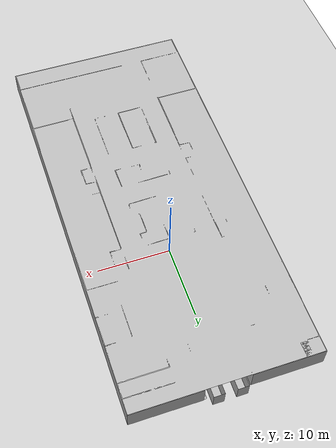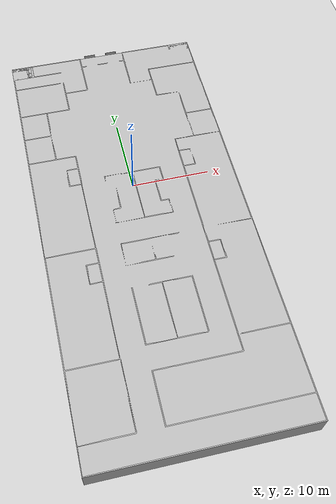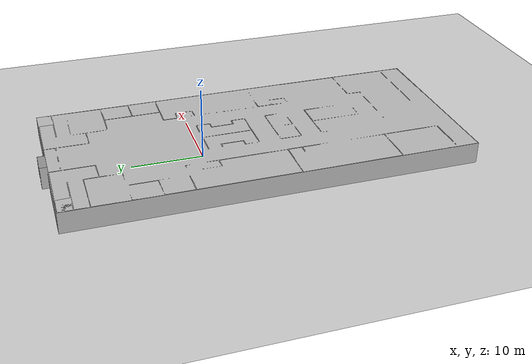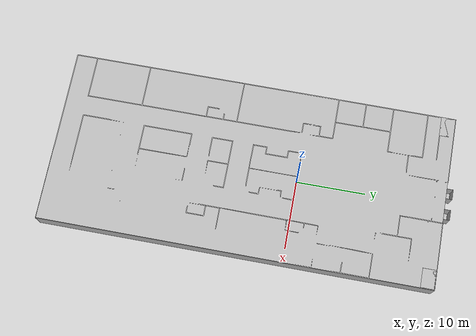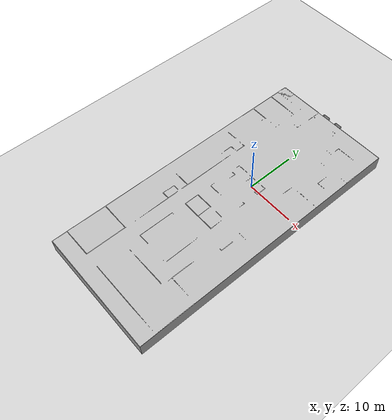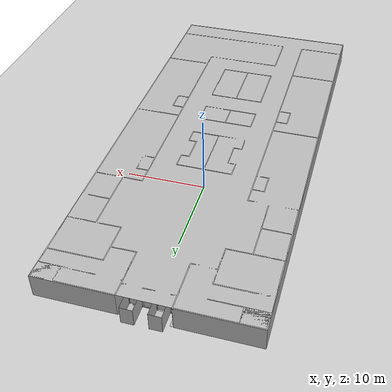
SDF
<sdf version="1.6">
 <world name="toposlam_validation">
  <plugin filename="libignition-gazebo-physics-system.so" name="ignition::gazebo::systems::Physics"/>
  <plugin filename="libignition-gazebo-user-commands-system.so" name="ignition::gazebo::systems::UserCommands"/>
  <plugin filename="libignition-gazebo-scene-broadcaster-system.so" name="ignition::gazebo::systems::SceneBroadcaster"/>
  <plugin filename="libignition-gazebo-sensors-system.so" name="ignition::gazebo::systems::Sensors">
   <render_engine>ogre2</render_engine>
  </plugin>
  <gravity>0 0 -9.8</gravity>
  <physics default="0" name="default_physics" type="ode">
   <max_step_size>0.001</max_step_size>
   <real_time_factor>1</real_time_factor>
   <real_time_update_rate>1000</real_time_update_rate>
  </physics>
  <scene><ambient>0.6 0.6 0.6 1</ambient><background>0.4 0.4 0.4 1</background><shadows>false</shadows></scene>
  <model name="aws_robomaker_hospital_floor_01_floor_1">
   <include>
    <uri>model://aws_robomaker_hospital_floor_01_floor</uri>
    <static>true</static>
    <pose>-0.001425 -0.014447 0 0 -0 0</pose>
   </include>
  </model>
  <model name="aws_robomaker_hospital_floor_01_walls_1">
   <include>
    <uri>model://aws_robomaker_hospital_floor_01_walls</uri>
    <static>true</static>
    <pose>-0.013823 -0.013783 0 0 -0 0</pose>
   </include>
  </model>
  <model name="aws_robomaker_hospital_floor_01_ceiling_1">
   <include>
    <uri>model://aws_robomaker_hospital_floor_01_ceiling</uri>
    <static>true</static>
    <pose>-0.013823 -0.013783 0 0 -0 0</pose>
   </include>
  </model>
  <model name="aws_robomaker_hospital_elevator_01_portal_1">
   <include>
    <uri>model://aws_robomaker_hospital_elevator_01_portal</uri>
    <static>true</static>
    <pose>-1.50654 19.4813 0.19 0 -0 0</pose>
   </include>
  </model>
  <model name="aws_robomaker_hospital_elevator_01_portal_2">
   <include>
    <uri>model://aws_robomaker_hospital_elevator_01_portal</uri>
    <static>true</static>
    <pose>1.51134 19.487 0.19 0 -0 0</pose>
   </include>
  </model>
  <model name="aws_robomaker_hospital_elevator_01_car_1">
   <include>
    <uri>model://aws_robomaker_hospital_elevator_01_car</uri>
    <static>true</static>
    <pose>-1.49587 19.35 0.19 0 -0 0</pose>
   </include>
  </model>
  <model name="aws_robomaker_hospital_elevator_01_car_2">
   <include>
    <uri>model://aws_robomaker_hospital_elevator_01_car</uri>
    <static>true</static>
    <pose>1.5407 19.35 0.19 0 -0 0</pose>
   </include>
  </model>
  <model name="aws_robomaker_hospital_elevator_01_door_1">
   <include>
    <uri>model://aws_robomaker_hospital_elevator_01_door</uri>
    <static>true</static>
    <pose>-1.51 19.35 0.19 0 -0 0</pose>
   </include>
  </model>
  <model name="aws_robomaker_hospital_elevator_01_door_2">
   <include>
    <uri>model://aws_robomaker_hospital_elevator_01_door</uri>
    <static>true</static>
    <pose>1.52843 19.3627 0.19 0 -0 0</pose>
   </include>
  </model>
  <model name="aws_robomaker_warehouse_ClutteringA_01_1">
   <include>
    <uri>model://aws_robomaker_warehouse_ClutteringA_01</uri>
    <static>true</static>
    <pose>10.8233 15.2153 0 0 -0 0</pose>
   </include>
  </model>
  <model name="ground_plane">
   <static>true</static>
   <link name="link">
    <collision name="collision">
     <geometry><plane><normal>0 0 1</normal><size>250 250</size></plane></geometry>
    </collision>
    <visual name="visual">
     <geometry><plane><normal>0 0 1</normal><size>250 250</size></plane></geometry>
     <material><ambient>0.8 0.8 0.8 1</ambient><diffuse>0.8 0.8 0.8 1</diffuse></material>
    </visual>
   </link>
  </model>
  <light name="sun_light" type="directional">
   <pose>0 0 100 0 0 0</pose>
   <diffuse>0.85 0.85 0.85 1</diffuse>
   <specular>0.15 0.15 0.15 1</specular>
   <attenuation><range>1000</range></attenuation>
   <direction>-0.5 0.1 -0.9</direction>
  </light>
  <include><uri>model://smart_agent</uri><name>smart_agent</name><pose>0 10 0.25 0 0 -1.5708</pose></include>
 </world>
</sdf>

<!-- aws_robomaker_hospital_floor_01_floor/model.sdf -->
<sdf version="1.6">
  <model name="aws_robomaker_hospital_floor_01_floor">
    <link name="link">
      <visual name="visual">
	    <geometry>
          <mesh>
            <uri>model://aws_robomaker_hospital_floor_01_floor/meshes/aws_robomaker_hospital_floor_01_floor_visual.dae</uri>
          </mesh>
        </geometry>
      </visual>
      <collision name="collision">
        <geometry>
          <mesh>
            <uri>model://aws_robomaker_hospital_floor_01_floor/meshes/aws_robomaker_hospital_floor_01_floor_collision.dae</uri>
          </mesh>
        </geometry>
        <surface>
          <friction>
            <ode>
              <mu>100</mu>
              <mu2>50</mu2>
            </ode>
          </friction>
        </surface>
      </collision>
</link>
  <static>1</static>
  </model>
</sdf>

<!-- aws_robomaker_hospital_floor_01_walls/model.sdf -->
<sdf version="1.6">
  <model name="aws_robomaker_hospital_floor_01_walls">
    <link name="link">
      <visual name="visual">
	    <geometry>
          <mesh>
            <uri>model://aws_robomaker_hospital_floor_01_walls/meshes/aws_robomaker_hospital_floor_01_walls_visual.dae</uri>
          </mesh>
        </geometry>
      </visual>
      <collision name="collision">
        <geometry>
          <mesh>
            <uri>model://aws_robomaker_hospital_floor_01_walls/meshes/aws_robomaker_hospital_floor_01_walls_collision.dae</uri>
          </mesh>
        </geometry>
      </collision>
</link>
  <static>1</static>
  </model>
</sdf>

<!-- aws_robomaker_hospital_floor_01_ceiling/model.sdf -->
<sdf version="1.6">
  <model name="aws_robomaker_hospital_floor_01_ceiling">
    <link name="link">
      <visual name="visual">
	    <geometry>
          <mesh>
            <uri>model://aws_robomaker_hospital_floor_01_ceiling/meshes/aws_robomaker_hospital_floor_01_ceiling_visual.dae</uri>
          </mesh>
        </geometry>
      </visual>
      <collision name="collision">
        <geometry>
          <mesh>
            <uri>model://aws_robomaker_hospital_floor_01_ceiling/meshes/aws_robomaker_hospital_floor_01_ceiling_collision.dae</uri>
          </mesh>
        </geometry>
      </collision>
</link>
  <static>1</static>
  </model>
</sdf>

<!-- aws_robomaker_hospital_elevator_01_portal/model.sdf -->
<sdf version="1.6">
  <model name="aws_robomaker_hospital_elevator_01_portal">
    <link name="link">
      <visual name="visual">
	    <geometry>
          <mesh>
            <uri>model://aws_robomaker_hospital_elevator_01_portal/meshes/aws_robomaker_hospital_elevator_01_portal_visual.dae</uri>
          </mesh>
        </geometry>
      </visual>
      <collision name="collision">
        <geometry>
          <mesh>
            <uri>model://aws_robomaker_hospital_elevator_01_portal/meshes/aws_robomaker_hospital_elevator_01_portal_collision.dae</uri>
          </mesh>
        </geometry>
      </collision>
</link>
  <static>1</static>
  </model>
</sdf>

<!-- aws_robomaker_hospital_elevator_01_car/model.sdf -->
<sdf version="1.6">
  <model name="aws_robomaker_hospital_elevator_01_car">
    <link name="link">
      <visual name="visual">
	    <geometry>
          <mesh>
            <uri>model://aws_robomaker_hospital_elevator_01_car/meshes/aws_robomaker_hospital_elevator_01_car_visual.dae</uri>
          </mesh>
        </geometry>
      </visual>
      <collision name="collision">
        <geometry>
          <mesh>
            <uri>model://aws_robomaker_hospital_elevator_01_car/meshes/aws_robomaker_hospital_elevator_01_car_collision.dae</uri>
          </mesh>
        </geometry>
      </collision>
</link>
  <static>1</static>
  </model>
</sdf>

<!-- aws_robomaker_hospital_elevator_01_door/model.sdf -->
<sdf version="1.6">
  <model name="aws_robomaker_hospital_elevator_01_door">
    <link name="link">
      <visual name="visual">
	    <geometry>
          <mesh>
            <uri>model://aws_robomaker_hospital_elevator_01_door/meshes/aws_robomaker_hospital_elevator_01_door_visual.dae</uri>
          </mesh>
        </geometry>
      </visual>
      <collision name="collision">
        <geometry>
          <mesh>
            <uri>model://aws_robomaker_hospital_elevator_01_door/meshes/aws_robomaker_hospital_elevator_01_door_collision.dae</uri>
          </mesh>
        </geometry>
      </collision>
</link>
  <static>1</static>
  </model>
</sdf>

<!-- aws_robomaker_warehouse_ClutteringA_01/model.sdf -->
<sdf version="1.6">
  <model name="aws_robomaker_warehouse_ClutteringA_01">
    <link name="link">
      <inertial>
        <mass>2</mass>
        <inertia>
          <ixx>0.841</ixx>
          <ixy>0</ixy>
          <ixz>0</ixz>
          <iyy>0.954</iyy>
          <iyz>0</iyz>
          <izz>1.422</izz>
        </inertia>
      </inertial>
      <collision name="collision">
        <geometry>
          <mesh>
            <uri>model://aws_robomaker_warehouse_ClutteringA_01/meshes/aws_robomaker_warehouse_ClutteringA_01_collision.DAE</uri>
            <scale>1 1 1</scale>
          </mesh>
        </geometry>
        <surface>
          <friction>
            <ode>
              <mu>0.6</mu>
              <mu2>0.6</mu2>
              <fdir1>0 0 0</fdir1>
              <slip1>0</slip1>
              <slip2>0</slip2>
            </ode>
            <torsional>
              <coefficient>1</coefficient>
              <patch_radius>0</patch_radius>
              <surface_radius>0</surface_radius>
              <use_patch_radius>1</use_patch_radius>
              <ode>
                <slip>0</slip>
              </ode>
            </torsional>
          </friction>
        </surface>
      </collision>
      <visual name="visual">
        <geometry>
          <mesh>
            <uri>model://aws_robomaker_warehouse_ClutteringA_01/meshes/aws_robomaker_warehouse_ClutteringA_01_visual.DAE</uri>
          </mesh>
        </geometry>
        <meta> <layer> 1 </layer></meta>
      </visual>
    </link>
    <static>1</static>
  </model>
</sdf>

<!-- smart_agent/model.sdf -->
<sdf version="1.9">
  <model name="smart_agent">
    <pose>0 0 0.25 0 0 0</pose>
    <static>false</static>
    <plugin
      filename="libignition-gazebo-velocity-control-system.so"
      name="ignition::gazebo::systems::VelocityControl">
      <topic>/model/smart_agent/cmd_vel</topic>
    </plugin>

    <link name="base_link">
      <inertial>
        <mass>8.0</mass>
        <inertia>
          <ixx>0.28</ixx>
          <iyy>0.28</iyy>
          <izz>0.45</izz>
          <ixy>0.0</ixy>
          <ixz>0.0</ixz>
          <iyz>0.0</iyz>
        </inertia>
      </inertial>
      <collision name="collision">
        <pose>0 0 0.24 0 0 0</pose>
        <geometry>
          <box>
            <size>0.5 0.35 0.48</size>
          </box>
        </geometry>
      </collision>
      <visual name="visual">
        <pose>0 0 0.24 0 0 0</pose>
        <geometry>
          <box>
            <size>0.5 0.35 0.48</size>
          </box>
        </geometry>
        <material>
          <ambient>0.5 0.5 0.5 1</ambient>
          <diffuse>0.5 0.5 0.5 1</diffuse>
        </material>
      </visual>
    </link>

    <link name="lidar_link">
      <pose>0.10 0 0.56 0 0 0</pose>
      <sensor name="lidar_sensor" type="lidar">
        <topic>/agent/lidar/scan</topic>
        <update_rate>10</update_rate>
        <always_on>true</always_on>
        <visualize>false</visualize>
        <gz_frame_id>lidar_link</gz_frame_id>
        <lidar>
          <scan>
            <horizontal>
              <samples>720</samples>
              <resolution>1</resolution>
              <min_angle>-3.14159</min_angle>
              <max_angle>3.14159</max_angle>
            </horizontal>
            <vertical>
              <samples>1</samples>
              <resolution>1</resolution>
              <min_angle>0.0</min_angle>
              <max_angle>0.0</max_angle>
            </vertical>
          </scan>
          <range>
            <min>0.12</min>
            <max>15.0</max>
            <resolution>0.01</resolution>
          </range>
          <noise>
            <type>gaussian</type>
            <mean>0.0</mean>
            <stddev>0.005</stddev>
          </noise>
        </lidar>
      </sensor>
      <visual name="visual">
        <geometry>
          <cylinder>
            <radius>0.04</radius>
            <length>0.04</length>
          </cylinder>
        </geometry>
        <material>
          <ambient>0.1 0.1 0.1 1</ambient>
          <diffuse>0.1 0.1 0.1 1</diffuse>
        </material>
      </visual>
    </link>
    <joint name="lidar_joint" type="fixed">
      <parent>base_link</parent>
      <child>lidar_link</child>
    </joint>

    <link name="front_camera_link">
      <pose>0.23 0 0.50 0 0 0</pose>
      <sensor name="front_camera_sensor" type="camera">
        <topic>/agent/front_camera/image</topic>
        <update_rate>20</update_rate>
        <always_on>true</always_on>
        <gz_frame_id>front_camera_link</gz_frame_id>
        <camera>
          <horizontal_fov>1.396</horizontal_fov>
          <image>
            <width>640</width>
            <height>480</height>
            <format>R8G8B8</format>
          </image>
          <clip>
            <near>0.05</near>
            <far>50.0</far>
          </clip>
        </camera>
      </sensor>
      <visual name="visual">
        <geometry><box><size>0.05 0.05 0.05</size></box></geometry>
        <material><ambient>0.2 0.2 0.9 1</ambient><diffuse>0.2 0.2 0.9 1</diffuse></material>
      </visual>
    </link>
    <joint name="front_camera_joint" type="fixed">
      <parent>base_link</parent>
      <child>front_camera_link</child>
    </joint>

    <link name="rear_camera_link">
      <pose>-0.23 0 0.50 0 0 3.14159</pose>
      <sensor name="rear_camera_sensor" type="camera">
        <topic>/agent/rear_camera/image</topic>
        <update_rate>20</update_rate>
        <always_on>true</always_on>
        <gz_frame_id>rear_camera_link</gz_frame_id>
        <camera>
          <horizontal_fov>1.396</horizontal_fov>
          <image>
            <width>640</width>
            <height>480</height>
            <format>R8G8B8</format>
          </image>
          <clip>
            <near>0.05</near>
            <far>50.0</far>
          </clip>
        </camera>
      </sensor>
      <visual name="visual">
        <geometry><box><size>0.05 0.05 0.05</size></box></geometry>
        <material><ambient>0.2 0.8 0.2 1</ambient><diffuse>0.2 0.8 0.2 1</diffuse></material>
      </visual>
    </link>
    <joint name="rear_camera_joint" type="fixed">
      <parent>base_link</parent>
      <child>rear_camera_link</child>
    </joint>

    <link name="depth_camera_link">
      <pose>0.23 0 0.50 0 0 0</pose>
      <sensor name="depth_camera_sensor" type="depth_camera">
        <topic>/agent/depth_camera/image</topic>
        <update_rate>15</update_rate>
        <always_on>true</always_on>
        <gz_frame_id>depth_camera_link</gz_frame_id>
        <camera>
          <horizontal_fov>1.396</horizontal_fov>
          <image>
            <width>640</width>
            <height>480</height>
            <format>R8G8B8</format>
          </image>
          <clip>
            <near>0.1</near>
            <far>20.0</far>
          </clip>
        </camera>
      </sensor>
      <visual name="visual">
        <geometry><box><size>0.05 0.05 0.05</size></box></geometry>
        <material><ambient>0.9 0.4 0.1 1</ambient><diffuse>0.9 0.4 0.1 1</diffuse></material>
      </visual>
    </link>
    <joint name="depth_camera_joint" type="fixed">
      <parent>base_link</parent>
      <child>depth_camera_link</child>
    </joint>
  </model>
</sdf>
